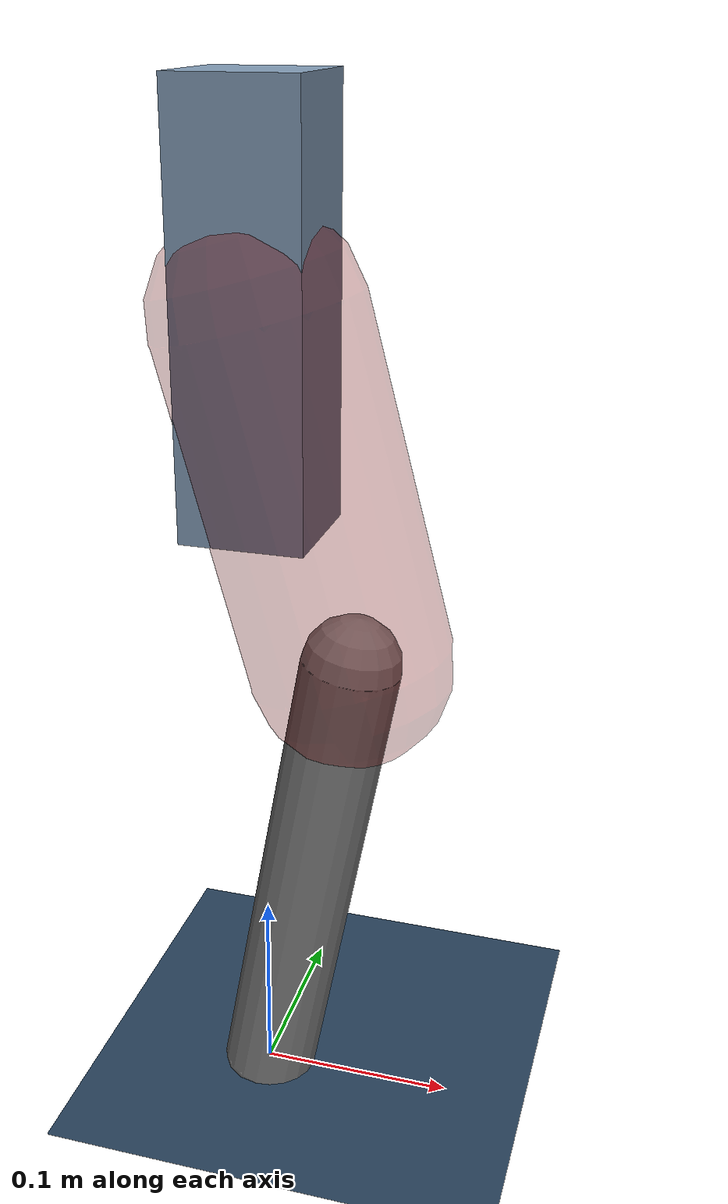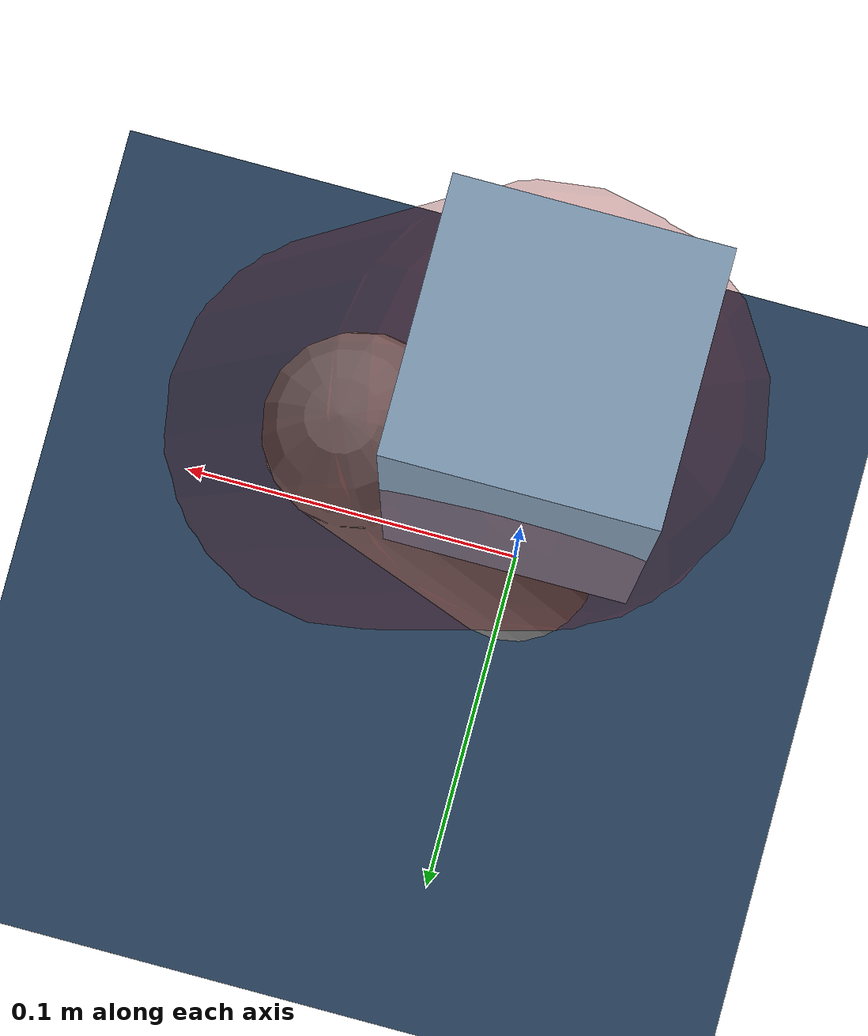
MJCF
<mujoco model="Hopper2D">
	<compiler inertiafromgeom="true" angle="radian" />
	<option timestep="0.001" integrator="implicit" cone="elliptic" solver="Newton" tolerance="1e-10" />

	<default>
		<geom contype="1" conaffinity="1" condim="3" friction="2 0.005 0.0001" solref="0.005 1" />
		<joint limited="true" damping="0.1" />
	</default>

	<asset>
		<texture name="skybox" type="skybox" builtin="gradient" rgb1=".4 .6 .8" rgb2="0 0 0" width="800" height="800" />
		<texture name="grid" type="2d" builtin="checker" rgb1=".1 .2 .3" rgb2=".2 .3 .4" width="300" height="300" mark="edge" markrgb=".2 .3 .4" />
		<material name="ground" texture="grid" texrepeat="1 1" texuniform="true" reflectance="0.1" />
		<material name="leg" rgba="0.5 0.6 0.7 1" />
	</asset>

	<worldbody>

		<geom name="floor" type="plane" size="5 5 0.25" material="ground" />

		<light directional="false" diffuse="0.8 0.8 0.8" specular="0.3 0.3 0.3" pos="0 0 2" dir="0 0 -1" />
		<light mode="targetbodycom" target="base" directional="false" diffuse="0.8 0.8 0.8" specular="0.3 0.3 0.3" pos="0 0 2" dir="0 0 -1" />

		<camera name="fixed" pos="0 -2 1" xyaxes="1 0 0 0 0 1" />
		<camera name="tracking" mode="trackcom" pos="0 -3 1" />

		<body name="root" pos="0 0 0.41321744958759554">
			<joint name="slide_x" type="slide" axis="1 0 0" range="-100 100" />
			<joint name="slide_z" type="slide" axis="0 0 1" range="0 10" />

			<body name="base" pos="0 0 0">
				<geom name="torso" type="box" size="0.03 0.03 0.1" mass="3.5620000000000003" material="leg" />

				<body name="link1" pos="0 0 0" euler="0 1.3044600992191389 0">
					<joint type="hinge" axis="0 -1 0" pos="0 0 0" name="hinge1" limited="true" range="-3.14 3.14" stiffness="0" damping="0.1" />
					<geom name="thigh" type="capsule" fromto="0 0 0 0.17021912264014807 0 0" size="0.05" rgba="0.5 0 0 0.3" mass="0.6568258943363553" />

					<body name="link2" pos="0.17021912264014807 0 0" euler="0 0.44435697860364154 0">
						<joint type="hinge" axis="0 -1 0" pos="0 0 0" name="hinge2" limited="true" range="-3.14 3.14" stiffness="0" damping="0.1" />
						<geom name="shank" type="capsule" fromto="0 0 0 0.2529983269474475 0 0" size="0.025" mass="0.44499866155795803" />

					</body>
				</body>
			</body>
		</body>
	</worldbody>

	<actuator>
		<motor name="torque1" joint="hinge1" ctrlrange="-171.21910410419554 171.21910410419554" ctrllimited="true" gear="1" />
		<motor name="torque2" joint="hinge2" ctrlrange="-103.43047419487799 103.43047419487799" ctrllimited="true" gear="1" />
	</actuator>
</mujoco>
